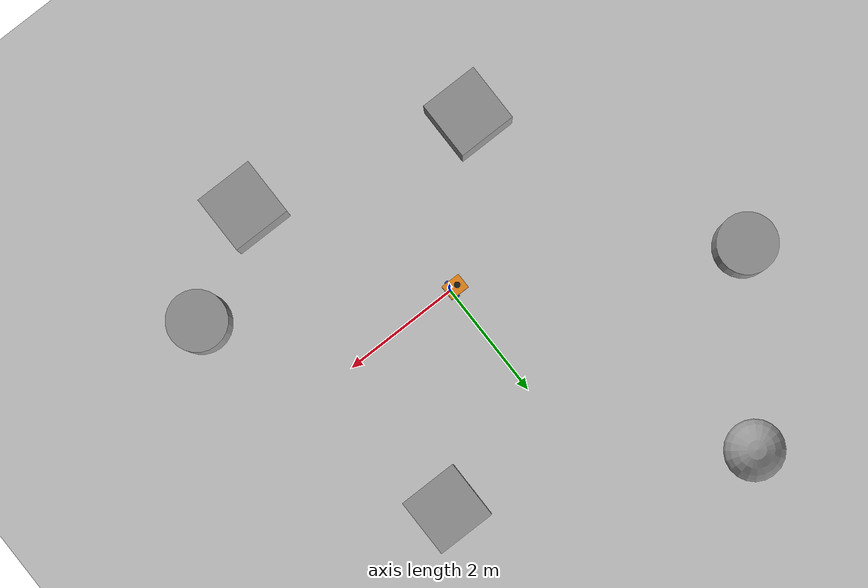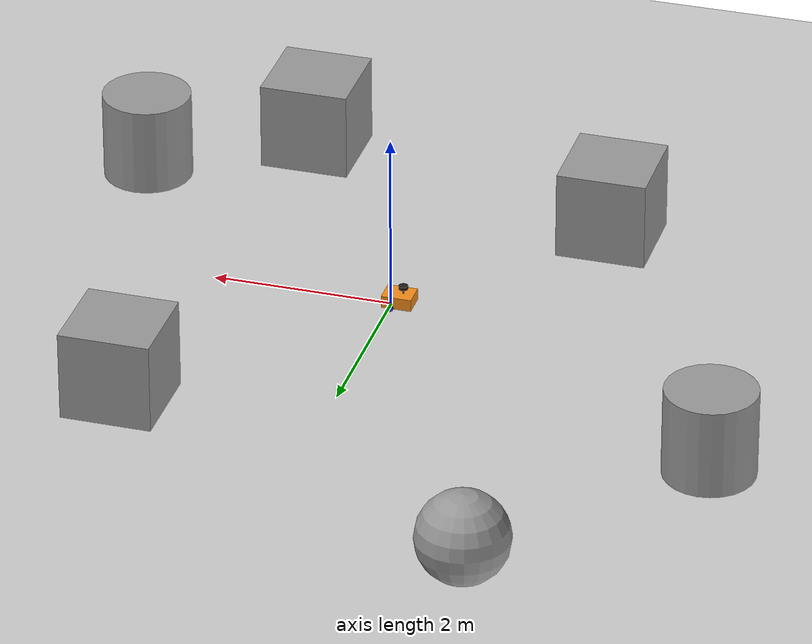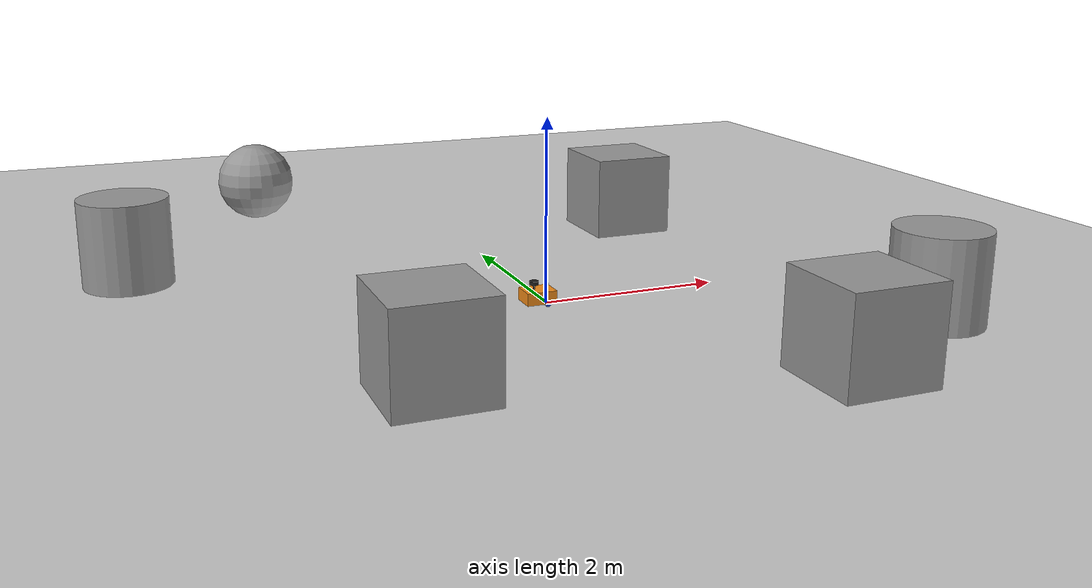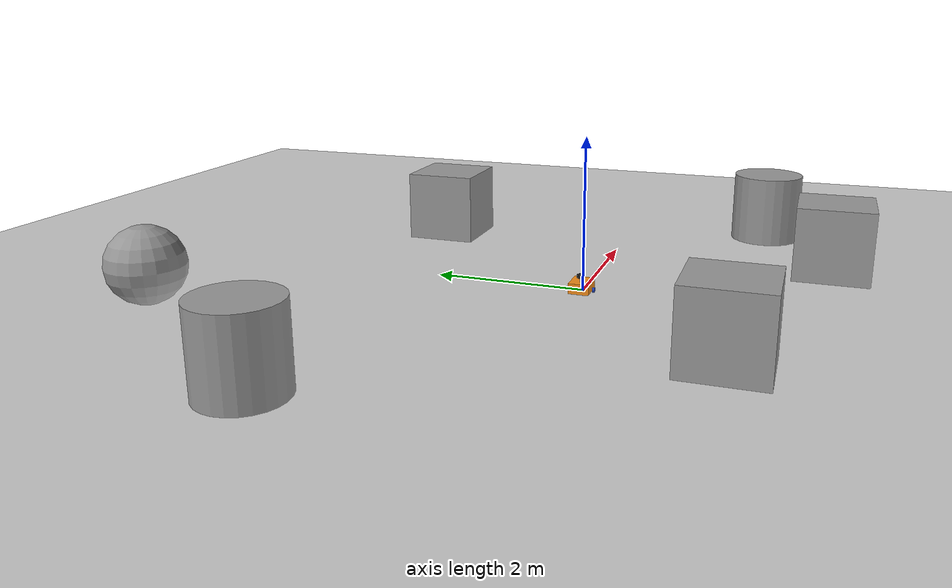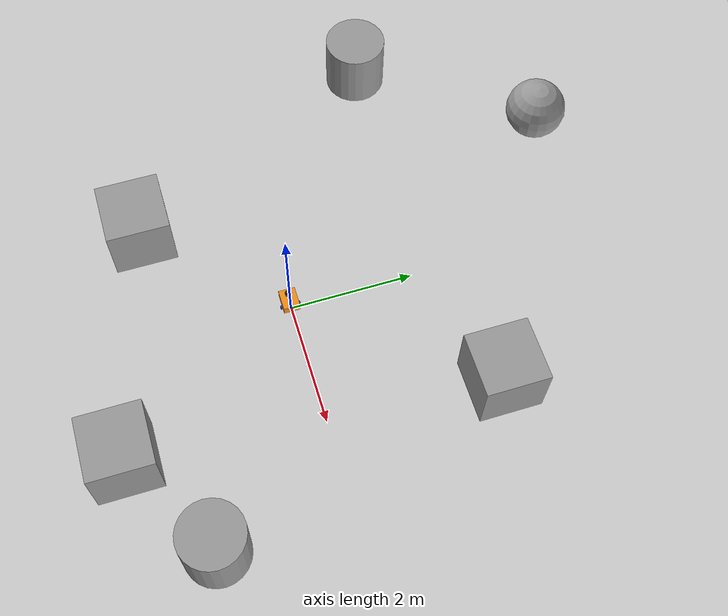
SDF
<sdf version="1.7">
 <world name="default">
  <light name="sun" type="directional">
   <pose>0 0 10 0 -0 0</pose>
   <diffuse>0.8 0.8 0.8 1</diffuse>
   <specular>0.2 0.2 0.2 1</specular>
   <attenuation>
    <range>1000</range>
    <constant>0.9</constant>
    <linear>0.01</linear>
    <quadratic>0.001</quadratic>
   </attenuation>
   <direction>-0.5 0.1 -0.9</direction>
   <spot><inner_angle>0</inner_angle><outer_angle>0</outer_angle><falloff>0</falloff></spot>
  </light>
  <model name="ground_plane">
   <static>1</static>
   <link name="link">
    <collision name="collision">
     <geometry><plane><normal>0 0 1</normal><size>100 100</size></plane></geometry>
     <surface>
      <contact><collide_bitmask>65535</collide_bitmask></contact>
      <friction><ode><mu>100</mu><mu2>50</mu2></ode></friction>
     </surface>
    </collision>
    <visual name="visual">
     <cast_shadows>0</cast_shadows>
     <geometry><plane><normal>0 0 1</normal><size>100 100</size></plane></geometry>
     <material>
      <script><uri>file://media/materials/scripts/gazebo.material</uri><name>Gazebo/Grey</name></script>
     </material>
    </visual>
   </link>
  </model>
  <gravity>0 0 -9.8</gravity>
  <magnetic_field>6e-06 2.3e-05 -4.2e-05</magnetic_field>
  <atmosphere type="adiabatic"/>
  <physics type="ode">
   <max_step_size>0.001</max_step_size>
   <real_time_factor>1</real_time_factor>
   <real_time_update_rate>1000</real_time_update_rate>
  </physics>
  <scene><ambient>0.4 0.4 0.4 1</ambient><background>0.7 0.7 0.7 1</background><shadows>1</shadows></scene>
  <audio><device>default</device></audio>
  <spherical_coordinates>
   <surface_model>EARTH_WGS84</surface_model>
   <latitude_deg>0</latitude_deg>
   <longitude_deg>0</longitude_deg>
   <elevation>0</elevation>
   <heading_deg>0</heading_deg>
  </spherical_coordinates>
  <model name="my_robot">
   <link name="base_link">
    <inertial>
     <pose>-0.067475 0 0.081098 0 -0 0</pose>
     <mass>0.61</mass>
     <inertia>
      <ixx>0.00561003</ixx>
      <ixy>0</ixy>
      <ixz>0.000453811</ixz>
      <iyy>0.00760348</iyy>
      <iyz>0</iyz>
      <izz>0.00797093</izz>
     </inertia>
    </inertial>
    <collision name="base_link_fixed_joint_lump__chassis_collision">
     <pose>-0.0585 0 0.059 0 -0 0</pose>
     <geometry><box><size>0.335 0.265 0.138</size></box></geometry>
    </collision>
    <collision name="base_link_fixed_joint_lump__caster_wheel_collision_1">
     <pose>-0.151 0 -0.023 0 -0 0</pose>
     <geometry><sphere><radius>0.01</radius></sphere></geometry>
     <surface><friction><ode><mu>0.001</mu><mu2>0.001</mu2></ode></friction></surface>
    </collision>
    <collision name="base_link_fixed_joint_lump__laser_frame_collision_2">
     <pose>-0.104 0 0.202 0 -0 0</pose>
     <geometry><cylinder><length>0.04</length><radius>0.05</radius></cylinder></geometry>
    </collision>
    <visual name="base_link_fixed_joint_lump__chassis_visual">
     <pose>-0.0585 0 0.059 0 -0 0</pose>
     <geometry><box><size>0.335 0.265 0.138</size></box></geometry>
     <material>
      <script><name>Gazebo/Orange</name><uri>file://media/materials/scripts/gazebo.material</uri></script>
     </material>
    </visual>
    <visual name="base_link_fixed_joint_lump__camera_link_visual_1">
     <pose>0.05 0 0.171 0 0.18 0</pose>
     <geometry><box><size>0.01 0.03 0.03</size></box></geometry>
    </visual>
    <visual name="base_link_fixed_joint_lump__camera_link_visual_2">
     <pose>0.041049 0 0.121808 0 0.18 0</pose>
     <geometry><cylinder><length>0.1</length><radius>0.002</radius></cylinder></geometry>
    </visual>
    <visual name="base_link_fixed_joint_lump__caster_wheel_visual_3">
     <pose>-0.151 0 -0.023 0 -0 0</pose>
     <geometry><sphere><radius>0.01</radius></sphere></geometry>
     <material>
      <script><name>Gazebo/White</name><uri>file://media/materials/scripts/gazebo.material</uri></script>
     </material>
    </visual>
    <visual name="base_link_fixed_joint_lump__laser_frame_visual_4">
     <pose>-0.104 0 0.202 0 -0 0</pose>
     <geometry><cylinder><length>0.04</length><radius>0.05</radius></cylinder></geometry>
     <material>
      <script><name>Gazebo/Black</name><uri>file://media/materials/scripts/gazebo.material</uri></script>
     </material>
    </visual>
    <visual name="base_link_fixed_joint_lump__laser_frame_visual_5">
     <pose>-0.104 0 0.152 0 -0 0</pose>
     <geometry><cylinder><length>0.1</length><radius>0.01</radius></cylinder></geometry>
     <material>
      <script><name>Gazebo/Black</name><uri>file://media/materials/scripts/gazebo.material</uri></script>
     </material>
    </visual>
    <sensor name="camera1" type="camera">
     <update_rate>30</update_rate>
     <camera name="head">
      <horizontal_fov>1.39626</horizontal_fov>
      <image><width>800</width><height>800</height><format>R8G8B8</format></image>
      <clip><near>0.02</near><far>300</far></clip>
      <noise><type>gaussian</type><mean>0</mean><stddev>0.007</stddev></noise>
     </camera>
     <plugin name="camera_controller" filename="libgazebo_ros_camera.so">
      <alwaysOn>1</alwaysOn>
      <updateRate>0.0</updateRate>
      <cameraName>rrbot/camera1</cameraName>
      <imageTopicName>image_raw</imageTopicName>
      <cameraInfoTopicName>camera_info</cameraInfoTopicName>
      <frameName>camera_link</frameName>
      <hackBaseline>0.07</hackBaseline>
      <distortionK1>0.0</distortionK1>
      <distortionK2>0.0</distortionK2>
      <distortionK3>0.0</distortionK3>
      <distortionT1>0.0</distortionT1>
      <distortionT2>0.0</distortionT2>
     </plugin>
     <pose>0.05 0 0.171 0 0.18 0</pose>
    </sensor>
    <sensor name="laser" type="ray">
     <visualize>1</visualize>
     <update_rate>10</update_rate>
     <ray>
      <scan>
       <horizontal>
        <samples>360</samples>
        <min_angle>-3.14</min_angle>
        <max_angle>3.14</max_angle>
        <resolution>1</resolution>
       </horizontal>
       <vertical><samples>1</samples><min_angle>0</min_angle><max_angle>0</max_angle></vertical>
      </scan>
      <range><min>0.3</min><max>12</max></range>
     </ray>
     <plugin name="laser_controller" filename="libgazebo_ros_ray_sensor.so">
      <ros><argument>~/out:=scan</argument></ros>
      <output_type>sensor_msgs/LaserScan</output_type>
      <frame_name>laser_frame</frame_name>
     </plugin>
     <pose>-0.104 0 0.202 0 -0 0</pose>
    </sensor>
   </link>
   <joint name="left_wheel_joint" type="revolute">
    <pose relative_to="base_link">0 0.1485 0 1.57079 -0 0</pose>
    <parent>base_link</parent>
    <child>left_wheel</child>
    <axis>
     <xyz>0 0 1</xyz>
     <limit><lower>-1e+16</lower><upper>1e+16</upper></limit>
     <dynamics><spring_reference>0</spring_reference><spring_stiffness>0</spring_stiffness></dynamics>
    </axis>
   </joint>
   <link name="left_wheel">
    <pose relative_to="left_wheel_joint">0 0 0 0 -0 0</pose>
    <inertial>
     <mass>0.05</mass>
     <inertia>
      <ixx>1.64292e-05</ixx>
      <ixy>0</ixy>
      <ixz>0</ixz>
      <iyy>1.64292e-05</iyy>
      <iyz>0</iyz>
      <izz>2.7225e-05</izz>
     </inertia>
    </inertial>
    <collision name="left_wheel_collision">
     <geometry><sphere><radius>0.033</radius></sphere></geometry>
    </collision>
    <visual name="left_wheel_visual">
     <geometry><cylinder><length>0.026</length><radius>0.033</radius></cylinder></geometry>
     <material>
      <script><name>Gazebo/Blue</name><uri>file://media/materials/scripts/gazebo.material</uri></script>
     </material>
    </visual>
   </link>
   <joint name="right_wheel_joint" type="revolute">
    <pose relative_to="base_link">0 -0.1485 0 1.57079 -0 0</pose>
    <parent>base_link</parent>
    <child>right_wheel</child>
    <axis>
     <xyz>0 0 -1</xyz>
     <limit><lower>-1e+16</lower><upper>1e+16</upper></limit>
     <dynamics><spring_reference>0</spring_reference><spring_stiffness>0</spring_stiffness></dynamics>
    </axis>
   </joint>
   <link name="right_wheel">
    <pose relative_to="right_wheel_joint">0 0 0 0 -0 0</pose>
    <inertial>
     <mass>0.05</mass>
     <inertia>
      <ixx>1.64292e-05</ixx>
      <ixy>0</ixy>
      <ixz>0</ixz>
      <iyy>1.64292e-05</iyy>
      <iyz>0</iyz>
      <izz>2.7225e-05</izz>
     </inertia>
    </inertial>
    <collision name="right_wheel_collision">
     <geometry><sphere><radius>0.033</radius></sphere></geometry>
    </collision>
    <visual name="right_wheel_visual">
     <geometry><cylinder><length>0.026</length><radius>0.033</radius></cylinder></geometry>
     <material>
      <script><name>Gazebo/Blue</name><uri>file://media/materials/scripts/gazebo.material</uri></script>
     </material>
    </visual>
   </link>
   <static>0</static>
   <plugin name="diff_drive" filename="libgazebo_ros_diff_drive.so">
    <robotNamespace>rav_bot</robotNamespace>
    <updateRate>10</updateRate>
    <left_joint>left_wheel_joint</left_joint>
    <right_joint>right_wheel_joint</right_joint>
    <wheel_separation>0.297</wheel_separation>
    <wheel_diameter>0.066</wheel_diameter>
    <max_wheel_torque>200</max_wheel_torque>
    <max_wheel_acceleration>10.0</max_wheel_acceleration>
    <commandTopic>cmd_vel</commandTopic>
    <odometry_frame>odom</odometry_frame>
    <odometryTopi>odom</odometryTopi>
    <robot_base_frame>base_footprint</robot_base_frame>
    <odometrySource>1</odometrySource>
    <publish_odom>1</publish_odom>
    <publish_odom_tf>1</publish_odom_tf>
    <publish_wheel_tf>1</publish_wheel_tf>
    <publisherWheelJointState>1</publisherWheelJointState>
    <legacyMode>0</legacyMode>
   </plugin>
   <pose>-0.035475 0.000104 0.032997 1.6e-05 1.8e-05 -0.000488</pose>
  </model>
  <model name="unit_cylinder">
   <pose>3.44755 -2.03526 0.499998 3e-06 -4e-06 0</pose>
   <link name="link">
    <inertial>
     <mass>1</mass>
     <inertia><ixx>0.145833</ixx><ixy>0</ixy><ixz>0</ixz><iyy>0.145833</iyy><iyz>0</iyz><izz>0.125</izz></inertia>
    </inertial>
    <collision name="collision">
     <geometry><cylinder><radius>0.5</radius><length>1</length></cylinder></geometry>
    </collision>
    <visual name="visual">
     <geometry><cylinder><radius>0.5</radius><length>1</length></cylinder></geometry>
     <material>
      <script><name>Gazebo/Grey</name><uri>file://media/materials/scripts/gazebo.material</uri></script>
     </material>
    </visual>
   </link>
  </model>
  <model name="unit_box">
   <pose>-1.92931 -2.01387 0.499995 0 1e-05 0</pose>
   <link name="link">
    <inertial>
     <mass>1</mass>
     <inertia>
      <ixx>0.166667</ixx>
      <ixy>0</ixy>
      <ixz>0</ixz>
      <iyy>0.166667</iyy>
      <iyz>0</iyz>
      <izz>0.166667</izz>
     </inertia>
    </inertial>
    <collision name="collision"><geometry><box><size>1 1 1</size></box></geometry></collision>
    <visual name="visual">
     <geometry><box><size>1 1 1</size></box></geometry>
     <material>
      <script><name>Gazebo/Grey</name><uri>file://media/materials/scripts/gazebo.material</uri></script>
     </material>
    </visual>
   </link>
  </model>
  <model name="unit_sphere">
   <pose>-2.22555 4.96957 0.5 0 -0 0</pose>
   <link name="link">
    <inertial>
     <mass>1</mass>
     <inertia><ixx>0.1</ixx><ixy>0</ixy><ixz>0</ixz><iyy>0.1</iyy><iyz>0</iyz><izz>0.1</izz></inertia>
    </inertial>
    <collision name="collision"><geometry><sphere><radius>0.5</radius></sphere></geometry></collision>
    <visual name="visual">
     <geometry><sphere><radius>0.5</radius></sphere></geometry>
     <material>
      <script><name>Gazebo/Grey</name><uri>file://media/materials/scripts/gazebo.material</uri></script>
     </material>
    </visual>
   </link>
  </model>
  <model name="unit_cylinder_0">
   <pose>-4.11451 2.32492 0.499997 3e-06 4e-06 -0</pose>
   <link name="link">
    <inertial>
     <mass>1</mass>
     <inertia><ixx>0.145833</ixx><ixy>0</ixy><ixz>0</ixz><iyy>0.145833</iyy><iyz>0</iyz><izz>0.125</izz></inertia>
    </inertial>
    <collision name="collision">
     <geometry><cylinder><radius>0.5</radius><length>1</length></cylinder></geometry>
    </collision>
    <visual name="visual">
     <geometry><cylinder><radius>0.5</radius><length>1</length></cylinder></geometry>
     <material>
      <script><name>Gazebo/Grey</name><uri>file://media/materials/scripts/gazebo.material</uri></script>
     </material>
    </visual>
   </link>
  </model>
  <model name="unit_box_0">
   <pose>1.77431 -3.02455 0.499995 -1e-05 -0 0</pose>
   <link name="link">
    <inertial>
     <mass>1</mass>
     <inertia>
      <ixx>0.166667</ixx>
      <ixy>0</ixy>
      <ixz>0</ixz>
      <iyy>0.166667</iyy>
      <iyz>0</iyz>
      <izz>0.166667</izz>
     </inertia>
    </inertial>
    <collision name="collision"><geometry><box><size>1 1 1</size></box></geometry></collision>
    <visual name="visual">
     <geometry><box><size>1 1 1</size></box></geometry>
     <material>
      <script><name>Gazebo/Grey</name><uri>file://media/materials/scripts/gazebo.material</uri></script>
     </material>
    </visual>
   </link>
  </model>
  <model name="unit_box_1">
   <pose>2.16652 2.7032 0.5 0 -0 0</pose>
   <link name="link">
    <inertial>
     <mass>1</mass>
     <inertia>
      <ixx>0.166667</ixx>
      <ixy>0</ixy>
      <ixz>0</ixz>
      <iyy>0.166667</iyy>
      <iyz>0</iyz>
      <izz>0.166667</izz>
     </inertia>
    </inertial>
    <collision name="collision"><geometry><box><size>1 1 1</size></box></geometry></collision>
    <visual name="visual">
     <geometry><box><size>1 1 1</size></box></geometry>
     <material>
      <script><name>Gazebo/Grey</name><uri>file://media/materials/scripts/gazebo.material</uri></script>
     </material>
    </visual>
   </link>
  </model>
 </world>
</sdf>
